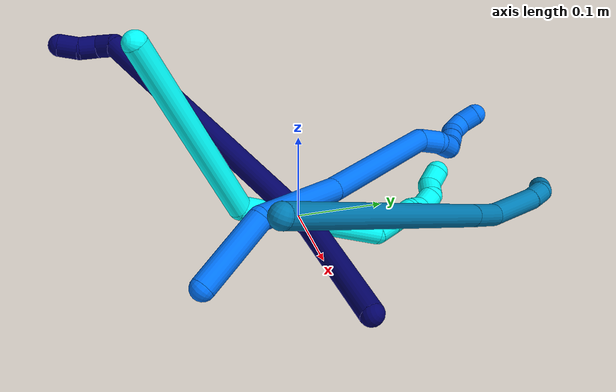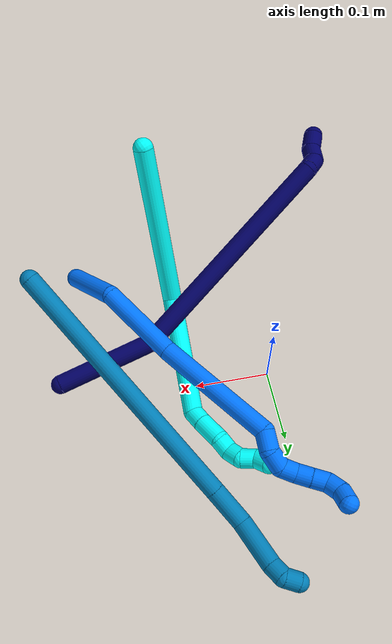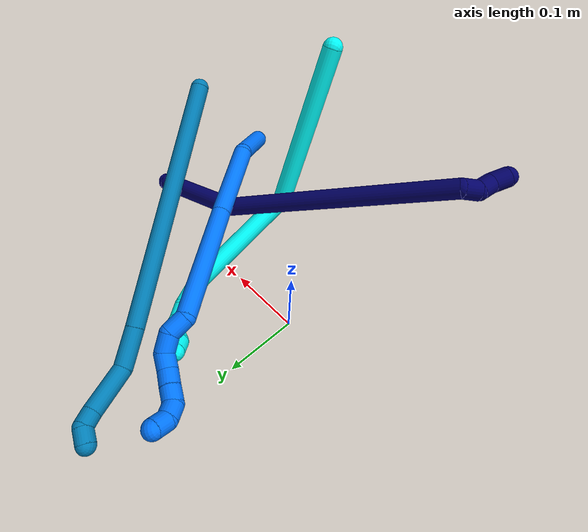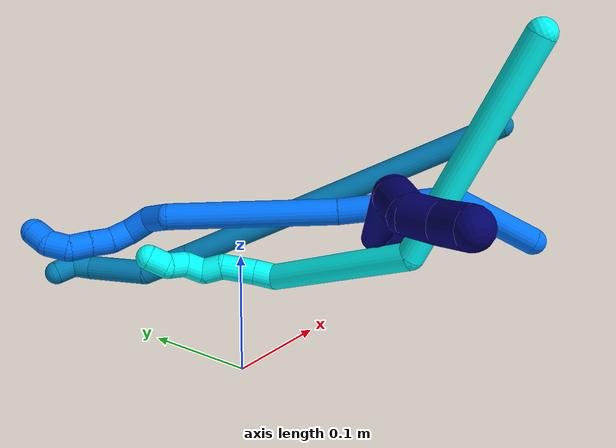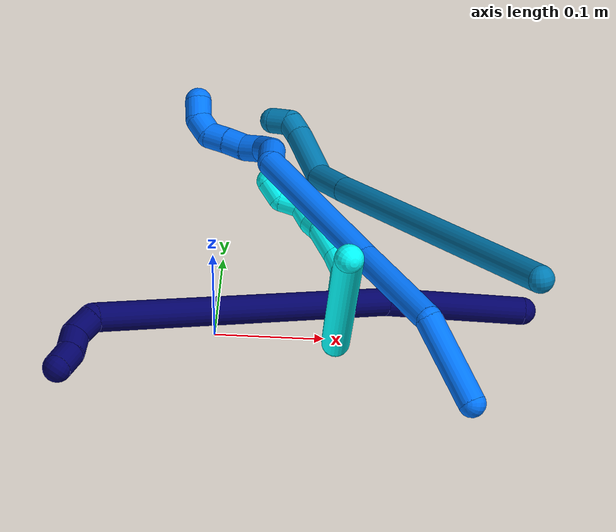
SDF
<sdf version="1.7">
 <world name="default">
  <model name="3">
   <static>0</static>
   <link name="3">
    <collision name="collision-cylinder-e_1_1_4">
     <pose>0.070438 -0.009194 -0.078288 3.02469 0.729261 2.83734</pose>
     <geometry><cylinder><radius>0.0125</radius><length>0.211425</length></cylinder></geometry>
     <surface>
      <friction><ode><mu>1.16</mu><mu2>1.16</mu2><slip1>0</slip1><slip2>0</slip2></ode></friction>
      <contact><ode><kp>1e+06</kp><kd>1</kd><max_vel>0</max_vel><min_depth>0.001</min_depth></ode></contact>
     </surface>
    </collision>
    <visual name="visual-cylinder-e_1_1_4">
     <pose>0.070438 -0.009194 -0.078288 3.02469 0.729261 2.83734</pose>
     <geometry><cylinder><radius>0.0125</radius><length>0.211425</length></cylinder></geometry>
     <material><ambient>0.003922 1 0.996078 1</ambient></material>
    </visual>
    <collision name="collision-cylinder-e_2_4_5">
     <pose>0.150536 0.014157 -0.226496 -2.70594 0.124601 -0.549429</pose>
     <geometry><cylinder><radius>0.0125</radius><length>0.155449</length></cylinder></geometry>
     <surface>
      <friction><ode><mu>1.16</mu><mu2>1.16</mu2><slip1>0</slip1><slip2>0</slip2></ode></friction>
      <contact><ode><kp>1e+06</kp><kd>1</kd><max_vel>0</max_vel><min_depth>0.001</min_depth></ode></contact>
     </surface>
    </collision>
    <visual name="visual-cylinder-e_2_4_5">
     <pose>0.150536 0.014157 -0.226496 -2.70594 0.124601 -0.549429</pose>
     <geometry><cylinder><radius>0.0125</radius><length>0.155449</length></cylinder></geometry>
     <material><ambient>0.003922 1 0.996078 1</ambient></material>
    </visual>
    <collision name="collision-cylinder-e_3_5_6">
     <pose>0.155204 0.048942 -0.304882 -2.88301 -0.518046 2.22928</pose>
     <geometry><cylinder><radius>0.0125</radius><length>0.020163</length></cylinder></geometry>
     <surface>
      <friction><ode><mu>1.16</mu><mu2>1.16</mu2><slip1>0</slip1><slip2>0</slip2></ode></friction>
      <contact><ode><kp>1e+06</kp><kd>1</kd><max_vel>0</max_vel><min_depth>0.001</min_depth></ode></contact>
     </surface>
    </collision>
    <visual name="visual-cylinder-e_3_5_6">
     <pose>0.155204 0.048942 -0.304882 -2.88301 -0.518046 2.22928</pose>
     <geometry><cylinder><radius>0.0125</radius><length>0.020163</length></cylinder></geometry>
     <material><ambient>0.003922 1 0.996078 1</ambient></material>
    </visual>
    <collision name="collision-cylinder-e_4_6_7">
     <pose>0.142216 0.053521 -0.327409 -2.97676 -0.511236 2.5293</pose>
     <geometry><cylinder><radius>0.0125</radius><length>0.032685</length></cylinder></geometry>
     <surface>
      <friction><ode><mu>1.16</mu><mu2>1.16</mu2><slip1>0</slip1><slip2>0</slip2></ode></friction>
      <contact><ode><kp>1e+06</kp><kd>1</kd><max_vel>0</max_vel><min_depth>0.001</min_depth></ode></contact>
     </surface>
    </collision>
    <visual name="visual-cylinder-e_4_6_7">
     <pose>0.142216 0.053521 -0.327409 -2.97676 -0.511236 2.5293</pose>
     <geometry><cylinder><radius>0.0125</radius><length>0.032685</length></cylinder></geometry>
     <material><ambient>0.003922 1 0.996078 1</ambient></material>
    </visual>
    <collision name="collision-cylinder-e_5_7_8">
     <pose>0.133088 0.055756 -0.351429 3.13123 -0.113226 -2.95925</pose>
     <geometry><cylinder><radius>0.0125</radius><length>0.020051</length></cylinder></geometry>
     <surface>
      <friction><ode><mu>1.16</mu><mu2>1.16</mu2><slip1>0</slip1><slip2>0</slip2></ode></friction>
      <contact><ode><kp>1e+06</kp><kd>1</kd><max_vel>0</max_vel><min_depth>0.001</min_depth></ode></contact>
     </surface>
    </collision>
    <visual name="visual-cylinder-e_5_7_8">
     <pose>0.133088 0.055756 -0.351429 3.13123 -0.113226 -2.95925</pose>
     <geometry><cylinder><radius>0.0125</radius><length>0.020051</length></cylinder></geometry>
     <material><ambient>0.003922 1 0.996078 1</ambient></material>
    </visual>
    <collision name="collision-cylinder-e_6_8_9">
     <pose>0.124922 0.056794 -0.368493 -2.98229 -0.774049 2.75481</pose>
     <geometry><cylinder><radius>0.0125</radius><length>0.020121</length></cylinder></geometry>
     <surface>
      <friction><ode><mu>1.16</mu><mu2>1.16</mu2><slip1>0</slip1><slip2>0</slip2></ode></friction>
      <contact><ode><kp>1e+06</kp><kd>1</kd><max_vel>0</max_vel><min_depth>0.001</min_depth></ode></contact>
     </surface>
    </collision>
    <visual name="visual-cylinder-e_6_8_9">
     <pose>0.124922 0.056794 -0.368493 -2.98229 -0.774049 2.75481</pose>
     <geometry><cylinder><radius>0.0125</radius><length>0.020121</length></cylinder></geometry>
     <material><ambient>0.003922 1 0.996078 1</ambient></material>
    </visual>
    <collision name="collision-cylinder-e_7_9_10">
     <pose>0.111981 0.052229 -0.381354 2.36067 -0.629824 -1.33899</pose>
     <geometry><cylinder><radius>0.0125</radius><length>0.020062</length></cylinder></geometry>
     <surface>
      <friction><ode><mu>1.16</mu><mu2>1.16</mu2><slip1>0</slip1><slip2>0</slip2></ode></friction>
      <contact><ode><kp>1e+06</kp><kd>1</kd><max_vel>0</max_vel><min_depth>0.001</min_depth></ode></contact>
     </surface>
    </collision>
    <visual name="visual-cylinder-e_7_9_10">
     <pose>0.111981 0.052229 -0.381354 2.36067 -0.629824 -1.33899</pose>
     <geometry><cylinder><radius>0.0125</radius><length>0.020062</length></cylinder></geometry>
     <material><ambient>0.003922 1 0.996078 1</ambient></material>
    </visual>
    <collision name="collision-cylinder-e_8_10_2">
     <pose>0.098169 0.047051 -0.393251 -3.05574 -0.908618 2.96615</pose>
     <geometry><cylinder><radius>0.0125</radius><length>0.020043</length></cylinder></geometry>
     <surface>
      <friction><ode><mu>1.16</mu><mu2>1.16</mu2><slip1>0</slip1><slip2>0</slip2></ode></friction>
      <contact><ode><kp>1e+06</kp><kd>1</kd><max_vel>0</max_vel><min_depth>0.001</min_depth></ode></contact>
     </surface>
    </collision>
    <visual name="visual-cylinder-e_8_10_2">
     <pose>0.098169 0.047051 -0.393251 -3.05574 -0.908618 2.96615</pose>
     <geometry><cylinder><radius>0.0125</radius><length>0.020043</length></cylinder></geometry>
     <material><ambient>0.003922 1 0.996078 1</ambient></material>
    </visual>
    <collision name="collision-sphere-2">
     <pose>0.090266 0.047579 -0.39939 0 -0 0</pose>
     <geometry><sphere><radius>0.0125</radius></sphere></geometry>
     <surface>
      <friction><ode><mu>1.16</mu><mu2>1.16</mu2><slip1>0</slip1><slip2>0</slip2></ode></friction>
      <contact><ode><kp>1e+06</kp><kd>1</kd><max_vel>0</max_vel><min_depth>0.001</min_depth></ode></contact>
     </surface>
    </collision>
    <visual name="visual-sphere-2">
     <pose>0.090266 0.047579 -0.39939 0 -0 0</pose>
     <geometry><sphere><radius>0.0125</radius></sphere></geometry>
     <material><ambient>0.003922 1 0.996078 1</ambient></material>
    </visual>
    <collision name="collision-sphere-10">
     <pose>0.106073 0.046522 -0.387112 0 -0 0</pose>
     <geometry><sphere><radius>0.0125</radius></sphere></geometry>
     <surface>
      <friction><ode><mu>1.16</mu><mu2>1.16</mu2><slip1>0</slip1><slip2>0</slip2></ode></friction>
      <contact><ode><kp>1e+06</kp><kd>1</kd><max_vel>0</max_vel><min_depth>0.001</min_depth></ode></contact>
     </surface>
    </collision>
    <visual name="visual-sphere-10">
     <pose>0.106073 0.046522 -0.387112 0 -0 0</pose>
     <geometry><sphere><radius>0.0125</radius></sphere></geometry>
     <material><ambient>0.003922 1 0.996078 1</ambient></material>
    </visual>
    <collision name="collision-sphere-9">
     <pose>0.11789 0.057935 -0.375596 0 -0 0</pose>
     <geometry><sphere><radius>0.0125</radius></sphere></geometry>
     <surface>
      <friction><ode><mu>1.16</mu><mu2>1.16</mu2><slip1>0</slip1><slip2>0</slip2></ode></friction>
      <contact><ode><kp>1e+06</kp><kd>1</kd><max_vel>0</max_vel><min_depth>0.001</min_depth></ode></contact>
     </surface>
    </collision>
    <visual name="visual-sphere-9">
     <pose>0.11789 0.057935 -0.375596 0 -0 0</pose>
     <geometry><sphere><radius>0.0125</radius></sphere></geometry>
     <material><ambient>0.003922 1 0.996078 1</ambient></material>
    </visual>
    <collision name="collision-sphere-4">
     <pose>0.140877 -0.018388 -0.156577 0 -0 0</pose>
     <geometry><sphere><radius>0.0125</radius></sphere></geometry>
     <surface>
      <friction><ode><mu>1.16</mu><mu2>1.16</mu2><slip1>0</slip1><slip2>0</slip2></ode></friction>
      <contact><ode><kp>1e+06</kp><kd>1</kd><max_vel>0</max_vel><min_depth>0.001</min_depth></ode></contact>
     </surface>
    </collision>
    <visual name="visual-sphere-4">
     <pose>0.140877 -0.018388 -0.156577 0 -0 0</pose>
     <geometry><sphere><radius>0.0125</radius></sphere></geometry>
     <material><ambient>0.003922 1 0.996078 1</ambient></material>
    </visual>
    <collision name="collision-sphere-1">
     <geometry><sphere><radius>0.0125</radius></sphere></geometry>
     <surface>
      <friction><ode><mu>1.16</mu><mu2>1.16</mu2><slip1>0</slip1><slip2>0</slip2></ode></friction>
      <contact><ode><kp>1e+06</kp><kd>1</kd><max_vel>0</max_vel><min_depth>0.001</min_depth></ode></contact>
     </surface>
    </collision>
    <visual name="visual-sphere-1">
     <geometry><sphere><radius>0.0125</radius></sphere></geometry>
     <material><ambient>0.003922 1 0.996078 1</ambient></material>
    </visual>
    <collision name="collision-sphere-8">
     <pose>0.131955 0.055653 -0.36139 0 -0 0</pose>
     <geometry><sphere><radius>0.0125</radius></sphere></geometry>
     <surface>
      <friction><ode><mu>1.16</mu><mu2>1.16</mu2><slip1>0</slip1><slip2>0</slip2></ode></friction>
      <contact><ode><kp>1e+06</kp><kd>1</kd><max_vel>0</max_vel><min_depth>0.001</min_depth></ode></contact>
     </surface>
    </collision>
    <visual name="visual-sphere-8">
     <pose>0.131955 0.055653 -0.36139 0 -0 0</pose>
     <geometry><sphere><radius>0.0125</radius></sphere></geometry>
     <material><ambient>0.003922 1 0.996078 1</ambient></material>
    </visual>
    <collision name="collision-sphere-5">
     <pose>0.160196 0.046703 -0.296414 0 -0 0</pose>
     <geometry><sphere><radius>0.0125</radius></sphere></geometry>
     <surface>
      <friction><ode><mu>1.16</mu><mu2>1.16</mu2><slip1>0</slip1><slip2>0</slip2></ode></friction>
      <contact><ode><kp>1e+06</kp><kd>1</kd><max_vel>0</max_vel><min_depth>0.001</min_depth></ode></contact>
     </surface>
    </collision>
    <visual name="visual-sphere-5">
     <pose>0.160196 0.046703 -0.296414 0 -0 0</pose>
     <geometry><sphere><radius>0.0125</radius></sphere></geometry>
     <material><ambient>0.003922 1 0.996078 1</ambient></material>
    </visual>
    <collision name="collision-sphere-6">
     <pose>0.150212 0.051182 -0.313349 0 -0 0</pose>
     <geometry><sphere><radius>0.0125</radius></sphere></geometry>
     <surface>
      <friction><ode><mu>1.16</mu><mu2>1.16</mu2><slip1>0</slip1><slip2>0</slip2></ode></friction>
      <contact><ode><kp>1e+06</kp><kd>1</kd><max_vel>0</max_vel><min_depth>0.001</min_depth></ode></contact>
     </surface>
    </collision>
    <visual name="visual-sphere-6">
     <pose>0.150212 0.051182 -0.313349 0 -0 0</pose>
     <geometry><sphere><radius>0.0125</radius></sphere></geometry>
     <material><ambient>0.003922 1 0.996078 1</ambient></material>
    </visual>
    <collision name="collision-sphere-7">
     <pose>0.13422 0.055859 -0.341469 0 -0 0</pose>
     <geometry><sphere><radius>0.0125</radius></sphere></geometry>
     <surface>
      <friction><ode><mu>1.16</mu><mu2>1.16</mu2><slip1>0</slip1><slip2>0</slip2></ode></friction>
      <contact><ode><kp>1e+06</kp><kd>1</kd><max_vel>0</max_vel><min_depth>0.001</min_depth></ode></contact>
     </surface>
    </collision>
    <visual name="visual-sphere-7">
     <pose>0.13422 0.055859 -0.341469 0 -0 0</pose>
     <geometry><sphere><radius>0.0125</radius></sphere></geometry>
     <material><ambient>0.003922 1 0.996078 1</ambient></material>
    </visual>
    <inertial>
     <pose>0.110934 0.014489 -0.197206 0 -0 0</pose>
     <mass>0.5</mass>
     <inertia>
      <ixx>-0.000281</ixx>
      <ixy>0</ixy>
      <ixz>0</ixz>
      <iyy>0.000562</iyy>
      <iyz>0</iyz>
      <izz>-0.00066</izz>
     </inertia>
    </inertial>
   </link>
   <pose>0.130781 -0.18417 0.277329 0.652763 1.05044 -0.369888</pose>
  </model>
  <model name="7">
   <static>0</static>
   <link name="7">
    <collision name="collision-cylinder-e_1_1_4">
     <pose>-0.055642 0.003552 -0.031609 -3.02968 -1.05149 2.9491</pose>
     <geometry><cylinder><radius>0.0125</radius><length>0.128185</length></cylinder></geometry>
     <surface>
      <friction><ode><mu>1.16</mu><mu2>1.16</mu2><slip1>0</slip1><slip2>0</slip2></ode></friction>
      <contact><ode><kp>1e+06</kp><kd>1</kd><max_vel>0</max_vel><min_depth>0.001</min_depth></ode></contact>
     </surface>
    </collision>
    <visual name="visual-cylinder-e_1_1_4">
     <pose>-0.055642 0.003552 -0.031609 -3.02968 -1.05149 2.9491</pose>
     <geometry><cylinder><radius>0.0125</radius><length>0.128185</length></cylinder></geometry>
     <material><ambient>0.003922 0 0.403922 1</ambient></material>
    </visual>
    <collision name="collision-cylinder-e_2_4_5">
     <pose>-0.235035 -0.044166 -0.137937 2.54021 -0.93874 -2.04405</pose>
     <geometry><cylinder><radius>0.0125</radius><length>0.306762</length></cylinder></geometry>
     <surface>
      <friction><ode><mu>1.16</mu><mu2>1.16</mu2><slip1>0</slip1><slip2>0</slip2></ode></friction>
      <contact><ode><kp>1e+06</kp><kd>1</kd><max_vel>0</max_vel><min_depth>0.001</min_depth></ode></contact>
     </surface>
    </collision>
    <visual name="visual-cylinder-e_2_4_5">
     <pose>-0.235035 -0.044166 -0.137937 2.54021 -0.93874 -2.04405</pose>
     <geometry><cylinder><radius>0.0125</radius><length>0.306762</length></cylinder></geometry>
     <material><ambient>0.003922 0 0.403922 1</ambient></material>
    </visual>
    <collision name="collision-cylinder-e_3_5_6">
     <pose>-0.361953 -0.098623 -0.222392 2.82528 -0.299869 -1.51659</pose>
     <geometry><cylinder><radius>0.0125</radius><length>0.021444</length></cylinder></geometry>
     <surface>
      <friction><ode><mu>1.16</mu><mu2>1.16</mu2><slip1>0</slip1><slip2>0</slip2></ode></friction>
      <contact><ode><kp>1e+06</kp><kd>1</kd><max_vel>0</max_vel><min_depth>0.001</min_depth></ode></contact>
     </surface>
    </collision>
    <visual name="visual-cylinder-e_3_5_6">
     <pose>-0.361953 -0.098623 -0.222392 2.82528 -0.299869 -1.51659</pose>
     <geometry><cylinder><radius>0.0125</radius><length>0.021444</length></cylinder></geometry>
     <material><ambient>0.003922 0 0.403922 1</ambient></material>
    </visual>
    <collision name="collision-cylinder-e_4_6_7">
     <pose>-0.364775 -0.109707 -0.239208 2.3017 0.03253 0.072829</pose>
     <geometry><cylinder><radius>0.0125</radius><length>0.021224</length></cylinder></geometry>
     <surface>
      <friction><ode><mu>1.16</mu><mu2>1.16</mu2><slip1>0</slip1><slip2>0</slip2></ode></friction>
      <contact><ode><kp>1e+06</kp><kd>1</kd><max_vel>0</max_vel><min_depth>0.001</min_depth></ode></contact>
     </surface>
    </collision>
    <visual name="visual-cylinder-e_4_6_7">
     <pose>-0.364775 -0.109707 -0.239208 2.3017 0.03253 0.072829</pose>
     <geometry><cylinder><radius>0.0125</radius><length>0.021224</length></cylinder></geometry>
     <material><ambient>0.003922 0 0.403922 1</ambient></material>
    </visual>
    <collision name="collision-cylinder-e_5_7_2">
     <pose>-0.367733 -0.125209 -0.253806 2.35041 -0.299607 -0.693636</pose>
     <geometry><cylinder><radius>0.0125</radius><length>0.022384</length></cylinder></geometry>
     <surface>
      <friction><ode><mu>1.16</mu><mu2>1.16</mu2><slip1>0</slip1><slip2>0</slip2></ode></friction>
      <contact><ode><kp>1e+06</kp><kd>1</kd><max_vel>0</max_vel><min_depth>0.001</min_depth></ode></contact>
     </surface>
    </collision>
    <visual name="visual-cylinder-e_5_7_2">
     <pose>-0.367733 -0.125209 -0.253806 2.35041 -0.299607 -0.693636</pose>
     <geometry><cylinder><radius>0.0125</radius><length>0.022384</length></cylinder></geometry>
     <material><ambient>0.003922 0 0.403922 1</ambient></material>
    </visual>
    <collision name="collision-sphere-2">
     <pose>-0.371036 -0.132814 -0.261324 0 -0 0</pose>
     <geometry><sphere><radius>0.0125</radius></sphere></geometry>
     <surface>
      <friction><ode><mu>1.16</mu><mu2>1.16</mu2><slip1>0</slip1><slip2>0</slip2></ode></friction>
      <contact><ode><kp>1e+06</kp><kd>1</kd><max_vel>0</max_vel><min_depth>0.001</min_depth></ode></contact>
     </surface>
    </collision>
    <visual name="visual-sphere-2">
     <pose>-0.371036 -0.132814 -0.261324 0 -0 0</pose>
     <geometry><sphere><radius>0.0125</radius></sphere></geometry>
     <material><ambient>0.003922 0 0.403922 1</ambient></material>
    </visual>
    <collision name="collision-sphere-7">
     <pose>-0.36443 -0.117604 -0.246288 0 -0 0</pose>
     <geometry><sphere><radius>0.0125</radius></sphere></geometry>
     <surface>
      <friction><ode><mu>1.16</mu><mu2>1.16</mu2><slip1>0</slip1><slip2>0</slip2></ode></friction>
      <contact><ode><kp>1e+06</kp><kd>1</kd><max_vel>0</max_vel><min_depth>0.001</min_depth></ode></contact>
     </surface>
    </collision>
    <visual name="visual-sphere-7">
     <pose>-0.36443 -0.117604 -0.246288 0 -0 0</pose>
     <geometry><sphere><radius>0.0125</radius></sphere></geometry>
     <material><ambient>0.003922 0 0.403922 1</ambient></material>
    </visual>
    <collision name="collision-sphere-6">
     <pose>-0.36512 -0.101809 -0.232128 0 -0 0</pose>
     <geometry><sphere><radius>0.0125</radius></sphere></geometry>
     <surface>
      <friction><ode><mu>1.16</mu><mu2>1.16</mu2><slip1>0</slip1><slip2>0</slip2></ode></friction>
      <contact><ode><kp>1e+06</kp><kd>1</kd><max_vel>0</max_vel><min_depth>0.001</min_depth></ode></contact>
     </surface>
    </collision>
    <visual name="visual-sphere-6">
     <pose>-0.36512 -0.101809 -0.232128 0 -0 0</pose>
     <geometry><sphere><radius>0.0125</radius></sphere></geometry>
     <material><ambient>0.003922 0 0.403922 1</ambient></material>
    </visual>
    <collision name="collision-sphere-5">
     <pose>-0.358785 -0.095436 -0.212657 0 -0 0</pose>
     <geometry><sphere><radius>0.0125</radius></sphere></geometry>
     <surface>
      <friction><ode><mu>1.16</mu><mu2>1.16</mu2><slip1>0</slip1><slip2>0</slip2></ode></friction>
      <contact><ode><kp>1e+06</kp><kd>1</kd><max_vel>0</max_vel><min_depth>0.001</min_depth></ode></contact>
     </surface>
    </collision>
    <visual name="visual-sphere-5">
     <pose>-0.358785 -0.095436 -0.212657 0 -0 0</pose>
     <geometry><sphere><radius>0.0125</radius></sphere></geometry>
     <material><ambient>0.003922 0 0.403922 1</ambient></material>
    </visual>
    <collision name="collision-sphere-1">
     <geometry><sphere><radius>0.0125</radius></sphere></geometry>
     <surface>
      <friction><ode><mu>1.16</mu><mu2>1.16</mu2><slip1>0</slip1><slip2>0</slip2></ode></friction>
      <contact><ode><kp>1e+06</kp><kd>1</kd><max_vel>0</max_vel><min_depth>0.001</min_depth></ode></contact>
     </surface>
    </collision>
    <visual name="visual-sphere-1">
     <geometry><sphere><radius>0.0125</radius></sphere></geometry>
     <material><ambient>0.003922 0 0.403922 1</ambient></material>
    </visual>
    <collision name="collision-sphere-4">
     <pose>-0.111285 0.007105 -0.063218 0 -0 0</pose>
     <geometry><sphere><radius>0.0125</radius></sphere></geometry>
     <surface>
      <friction><ode><mu>1.16</mu><mu2>1.16</mu2><slip1>0</slip1><slip2>0</slip2></ode></friction>
      <contact><ode><kp>1e+06</kp><kd>1</kd><max_vel>0</max_vel><min_depth>0.001</min_depth></ode></contact>
     </surface>
    </collision>
    <visual name="visual-sphere-4">
     <pose>-0.111285 0.007105 -0.063218 0 -0 0</pose>
     <geometry><sphere><radius>0.0125</radius></sphere></geometry>
     <material><ambient>0.003922 0 0.403922 1</ambient></material>
    </visual>
    <inertial>
     <pose>-0.205936 -0.040678 -0.123786 0 -0 0</pose>
     <mass>0.5</mass>
     <inertia>
      <ixx>-0.002022</ixx>
      <ixy>0</ixy>
      <ixz>0</ixz>
      <iyy>0.000801</iyy>
      <iyz>0</iyz>
      <izz>0.002889</izz>
     </inertia>
    </inertial>
   </link>
   <pose>0.279586 -0.008758 0.055065 -0.706854 0.663993 -0.099838</pose>
  </model>
  <model name="9">
   <static>0</static>
   <link name="9">
    <collision name="collision-cylinder-e_1_1_4">
     <pose>-0.090839 0.146563 0.003987 -1.5436 -0.554682 0.540523</pose>
     <geometry><cylinder><radius>0.0125</radius><length>0.344954</length></cylinder></geometry>
     <surface>
      <friction><ode><mu>1.16</mu><mu2>1.16</mu2><slip1>0</slip1><slip2>0</slip2></ode></friction>
      <contact><ode><kp>1e+06</kp><kd>1</kd><max_vel>0</max_vel><min_depth>0.001</min_depth></ode></contact>
     </surface>
    </collision>
    <visual name="visual-cylinder-e_1_1_4">
     <pose>-0.090839 0.146563 0.003987 -1.5436 -0.554682 0.540523</pose>
     <geometry><cylinder><radius>0.0125</radius><length>0.344954</length></cylinder></geometry>
     <material><ambient>0 0.490196 0.709804 1</ambient></material>
    </visual>
    <collision name="collision-cylinder-e_2_4_5">
     <pose>-0.195089 0.315373 0.009249 -1.51349 -0.541762 0.512916</pose>
     <geometry><cylinder><radius>0.0125</radius><length>0.052018</length></cylinder></geometry>
     <surface>
      <friction><ode><mu>1.16</mu><mu2>1.16</mu2><slip1>0</slip1><slip2>0</slip2></ode></friction>
      <contact><ode><kp>1e+06</kp><kd>1</kd><max_vel>0</max_vel><min_depth>0.001</min_depth></ode></contact>
     </surface>
    </collision>
    <visual name="visual-cylinder-e_2_4_5">
     <pose>-0.195089 0.315373 0.009249 -1.51349 -0.541762 0.512916</pose>
     <geometry><cylinder><radius>0.0125</radius><length>0.052018</length></cylinder></geometry>
     <material><ambient>0 0.490196 0.709804 1</ambient></material>
    </visual>
    <collision name="collision-cylinder-e_3_5_6">
     <pose>-0.21849 0.363918 0.024194 -1.09146 -0.325111 0.198524</pose>
     <geometry><cylinder><radius>0.0125</radius><length>0.062551</length></cylinder></geometry>
     <surface>
      <friction><ode><mu>1.16</mu><mu2>1.16</mu2><slip1>0</slip1><slip2>0</slip2></ode></friction>
      <contact><ode><kp>1e+06</kp><kd>1</kd><max_vel>0</max_vel><min_depth>0.001</min_depth></ode></contact>
     </surface>
    </collision>
    <visual name="visual-cylinder-e_3_5_6">
     <pose>-0.21849 0.363918 0.024194 -1.09146 -0.325111 0.198524</pose>
     <geometry><cylinder><radius>0.0125</radius><length>0.062551</length></cylinder></geometry>
     <material><ambient>0 0.490196 0.709804 1</ambient></material>
    </visual>
    <collision name="collision-cylinder-e_4_6_7">
     <pose>-0.232772 0.397547 0.043141 -0.946795 -0.443479 0.22995</pose>
     <geometry><cylinder><radius>0.0125</radius><length>0.020005</length></cylinder></geometry>
     <surface>
      <friction><ode><mu>1.16</mu><mu2>1.16</mu2><slip1>0</slip1><slip2>0</slip2></ode></friction>
      <contact><ode><kp>1e+06</kp><kd>1</kd><max_vel>0</max_vel><min_depth>0.001</min_depth></ode></contact>
     </surface>
    </collision>
    <visual name="visual-cylinder-e_4_6_7">
     <pose>-0.232772 0.397547 0.043141 -0.946795 -0.443479 0.22995</pose>
     <geometry><cylinder><radius>0.0125</radius><length>0.020005</length></cylinder></geometry>
     <material><ambient>0 0.490196 0.709804 1</ambient></material>
    </visual>
    <collision name="collision-cylinder-e_5_7_2">
     <pose>-0.246116 0.409636 0.048898 -1.47062 -1.08489 0.998314</pose>
     <geometry><cylinder><radius>0.0125</radius><length>0.020473</length></cylinder></geometry>
     <surface>
      <friction><ode><mu>1.16</mu><mu2>1.16</mu2><slip1>0</slip1><slip2>0</slip2></ode></friction>
      <contact><ode><kp>1e+06</kp><kd>1</kd><max_vel>0</max_vel><min_depth>0.001</min_depth></ode></contact>
     </surface>
    </collision>
    <visual name="visual-cylinder-e_5_7_2">
     <pose>-0.246116 0.409636 0.048898 -1.47062 -1.08489 0.998314</pose>
     <geometry><cylinder><radius>0.0125</radius><length>0.020473</length></cylinder></geometry>
     <material><ambient>0 0.490196 0.709804 1</ambient></material>
    </visual>
    <collision name="collision-sphere-2">
     <pose>-0.255167 0.414393 0.049377 0 -0 0</pose>
     <geometry><sphere><radius>0.0125</radius></sphere></geometry>
     <surface>
      <friction><ode><mu>1.16</mu><mu2>1.16</mu2><slip1>0</slip1><slip2>0</slip2></ode></friction>
      <contact><ode><kp>1e+06</kp><kd>1</kd><max_vel>0</max_vel><min_depth>0.001</min_depth></ode></contact>
     </surface>
    </collision>
    <visual name="visual-sphere-2">
     <pose>-0.255167 0.414393 0.049377 0 -0 0</pose>
     <geometry><sphere><radius>0.0125</radius></sphere></geometry>
     <material><ambient>0 0.490196 0.709804 1</ambient></material>
    </visual>
    <collision name="collision-sphere-7">
     <pose>-0.237064 0.40488 0.04842 0 -0 0</pose>
     <geometry><sphere><radius>0.0125</radius></sphere></geometry>
     <surface>
      <friction><ode><mu>1.16</mu><mu2>1.16</mu2><slip1>0</slip1><slip2>0</slip2></ode></friction>
      <contact><ode><kp>1e+06</kp><kd>1</kd><max_vel>0</max_vel><min_depth>0.001</min_depth></ode></contact>
     </surface>
    </collision>
    <visual name="visual-sphere-7">
     <pose>-0.237064 0.40488 0.04842 0 -0 0</pose>
     <geometry><sphere><radius>0.0125</radius></sphere></geometry>
     <material><ambient>0 0.490196 0.709804 1</ambient></material>
    </visual>
    <collision name="collision-sphere-6">
     <pose>-0.22848 0.390215 0.037862 0 -0 0</pose>
     <geometry><sphere><radius>0.0125</radius></sphere></geometry>
     <surface>
      <friction><ode><mu>1.16</mu><mu2>1.16</mu2><slip1>0</slip1><slip2>0</slip2></ode></friction>
      <contact><ode><kp>1e+06</kp><kd>1</kd><max_vel>0</max_vel><min_depth>0.001</min_depth></ode></contact>
     </surface>
    </collision>
    <visual name="visual-sphere-6">
     <pose>-0.22848 0.390215 0.037862 0 -0 0</pose>
     <geometry><sphere><radius>0.0125</radius></sphere></geometry>
     <material><ambient>0 0.490196 0.709804 1</ambient></material>
    </visual>
    <collision name="collision-sphere-5">
     <pose>-0.2085 0.337621 0.010526 0 -0 0</pose>
     <geometry><sphere><radius>0.0125</radius></sphere></geometry>
     <surface>
      <friction><ode><mu>1.16</mu><mu2>1.16</mu2><slip1>0</slip1><slip2>0</slip2></ode></friction>
      <contact><ode><kp>1e+06</kp><kd>1</kd><max_vel>0</max_vel><min_depth>0.001</min_depth></ode></contact>
     </surface>
    </collision>
    <visual name="visual-sphere-5">
     <pose>-0.2085 0.337621 0.010526 0 -0 0</pose>
     <geometry><sphere><radius>0.0125</radius></sphere></geometry>
     <material><ambient>0 0.490196 0.709804 1</ambient></material>
    </visual>
    <collision name="collision-sphere-1">
     <geometry><sphere><radius>0.0125</radius></sphere></geometry>
     <surface>
      <friction><ode><mu>1.16</mu><mu2>1.16</mu2><slip1>0</slip1><slip2>0</slip2></ode></friction>
      <contact><ode><kp>1e+06</kp><kd>1</kd><max_vel>0</max_vel><min_depth>0.001</min_depth></ode></contact>
     </surface>
    </collision>
    <visual name="visual-sphere-1">
     <geometry><sphere><radius>0.0125</radius></sphere></geometry>
     <material><ambient>0 0.490196 0.709804 1</ambient></material>
    </visual>
    <collision name="collision-sphere-4">
     <pose>-0.181678 0.293125 0.007973 0 -0 0</pose>
     <geometry><sphere><radius>0.0125</radius></sphere></geometry>
     <surface>
      <friction><ode><mu>1.16</mu><mu2>1.16</mu2><slip1>0</slip1><slip2>0</slip2></ode></friction>
      <contact><ode><kp>1e+06</kp><kd>1</kd><max_vel>0</max_vel><min_depth>0.001</min_depth></ode></contact>
     </surface>
    </collision>
    <visual name="visual-sphere-4">
     <pose>-0.181678 0.293125 0.007973 0 -0 0</pose>
     <geometry><sphere><radius>0.0125</radius></sphere></geometry>
     <material><ambient>0 0.490196 0.709804 1</ambient></material>
    </visual>
    <inertial>
     <pose>-0.129691 0.21213 0.010468 0 -0 0</pose>
     <mass>0.5</mass>
     <inertia>
      <ixx>0.004029</ixx>
      <ixy>0</ixy>
      <ixz>0</ixz>
      <iyy>0.002574</iyy>
      <iyz>0</iyz>
      <izz>-0.001122</izz>
     </inertia>
    </inertial>
   </link>
   <pose>0.291285 -0.093318 0.176586 -0.454055 -0.112227 0.04966</pose>
  </model>
  <model name="14">
   <static>0</static>
   <link name="14">
    <collision name="collision-cylinder-e_1_1_4">
     <pose>0.008627 0.041393 0.002365 -1.51373 0.20514 -0.193828</pose>
     <geometry><cylinder><radius>0.0125</radius><length>0.084697</length></cylinder></geometry>
     <surface>
      <friction><ode><mu>1.16</mu><mu2>1.16</mu2><slip1>0</slip1><slip2>0</slip2></ode></friction>
      <contact><ode><kp>1e+06</kp><kd>1</kd><max_vel>0</max_vel><min_depth>0.001</min_depth></ode></contact>
     </surface>
    </collision>
    <visual name="visual-cylinder-e_1_1_4">
     <pose>0.008627 0.041393 0.002365 -1.51373 0.20514 -0.193828</pose>
     <geometry><cylinder><radius>0.0125</radius><length>0.084697</length></cylinder></geometry>
     <material><ambient>0 0.462745 1 1</ambient></material>
    </visual>
    <collision name="collision-cylinder-e_2_4_5">
     <pose>0.001786 0.131586 -0.00967 -1.85773 -0.295112 0.392542</pose>
     <geometry><cylinder><radius>0.0125</radius><length>0.106357</length></cylinder></geometry>
     <surface>
      <friction><ode><mu>1.16</mu><mu2>1.16</mu2><slip1>0</slip1><slip2>0</slip2></ode></friction>
      <contact><ode><kp>1e+06</kp><kd>1</kd><max_vel>0</max_vel><min_depth>0.001</min_depth></ode></contact>
     </surface>
    </collision>
    <visual name="visual-cylinder-e_2_4_5">
     <pose>0.001786 0.131586 -0.00967 -1.85773 -0.295112 0.392542</pose>
     <geometry><cylinder><radius>0.0125</radius><length>0.106357</length></cylinder></geometry>
     <material><ambient>0 0.462745 1 1</ambient></material>
    </visual>
    <collision name="collision-cylinder-e_3_5_6">
     <pose>-0.033157 0.256551 -0.038859 -1.76259 -0.245944 0.297591</pose>
     <geometry><cylinder><radius>0.0125</radius><length>0.15999</length></cylinder></geometry>
     <surface>
      <friction><ode><mu>1.16</mu><mu2>1.16</mu2><slip1>0</slip1><slip2>0</slip2></ode></friction>
      <contact><ode><kp>1e+06</kp><kd>1</kd><max_vel>0</max_vel><min_depth>0.001</min_depth></ode></contact>
     </surface>
    </collision>
    <visual name="visual-cylinder-e_3_5_6">
     <pose>-0.033157 0.256551 -0.038859 -1.76259 -0.245944 0.297591</pose>
     <geometry><cylinder><radius>0.0125</radius><length>0.15999</length></cylinder></geometry>
     <material><ambient>0 0.462745 1 1</ambient></material>
    </visual>
    <collision name="collision-cylinder-e_4_6_7">
     <pose>-0.053502 0.341276 -0.062713 -2.38478 -0.069591 0.174667</pose>
     <geometry><cylinder><radius>0.0125</radius><length>0.024997</length></cylinder></geometry>
     <surface>
      <friction><ode><mu>1.16</mu><mu2>1.16</mu2><slip1>0</slip1><slip2>0</slip2></ode></friction>
      <contact><ode><kp>1e+06</kp><kd>1</kd><max_vel>0</max_vel><min_depth>0.001</min_depth></ode></contact>
     </surface>
    </collision>
    <visual name="visual-cylinder-e_4_6_7">
     <pose>-0.053502 0.341276 -0.062713 -2.38478 -0.069591 0.174667</pose>
     <geometry><cylinder><radius>0.0125</radius><length>0.024997</length></cylinder></geometry>
     <material><ambient>0 0.462745 1 1</ambient></material>
    </visual>
    <collision name="collision-cylinder-e_5_7_8">
     <pose>-0.061166 0.357429 -0.077625 -2.22708 -0.616729 1.14903</pose>
     <geometry><cylinder><radius>0.0125</radius><length>0.023494</length></cylinder></geometry>
     <surface>
      <friction><ode><mu>1.16</mu><mu2>1.16</mu2><slip1>0</slip1><slip2>0</slip2></ode></friction>
      <contact><ode><kp>1e+06</kp><kd>1</kd><max_vel>0</max_vel><min_depth>0.001</min_depth></ode></contact>
     </surface>
    </collision>
    <visual name="visual-cylinder-e_5_7_8">
     <pose>-0.061166 0.357429 -0.077625 -2.22708 -0.616729 1.14903</pose>
     <geometry><cylinder><radius>0.0125</radius><length>0.023494</length></cylinder></geometry>
     <material><ambient>0 0.462745 1 1</ambient></material>
    </visual>
    <collision name="collision-cylinder-e_6_8_9">
     <pose>-0.074917 0.372404 -0.082956 -1.50102 -0.75449 0.707876</pose>
     <geometry><cylinder><radius>0.0125</radius><length>0.020314</length></cylinder></geometry>
     <surface>
      <friction><ode><mu>1.16</mu><mu2>1.16</mu2><slip1>0</slip1><slip2>0</slip2></ode></friction>
      <contact><ode><kp>1e+06</kp><kd>1</kd><max_vel>0</max_vel><min_depth>0.001</min_depth></ode></contact>
     </surface>
    </collision>
    <visual name="visual-cylinder-e_6_8_9">
     <pose>-0.074917 0.372404 -0.082956 -1.50102 -0.75449 0.707876</pose>
     <geometry><cylinder><radius>0.0125</radius><length>0.020314</length></cylinder></geometry>
     <material><ambient>0 0.462745 1 1</ambient></material>
    </visual>
    <collision name="collision-cylinder-e_7_9_10">
     <pose>-0.086478 0.38853 -0.080524 -1.35501 -0.475125 0.384795</pose>
     <geometry><cylinder><radius>0.0125</radius><length>0.020132</length></cylinder></geometry>
     <surface>
      <friction><ode><mu>1.16</mu><mu2>1.16</mu2><slip1>0</slip1><slip2>0</slip2></ode></friction>
      <contact><ode><kp>1e+06</kp><kd>1</kd><max_vel>0</max_vel><min_depth>0.001</min_depth></ode></contact>
     </surface>
    </collision>
    <visual name="visual-cylinder-e_7_9_10">
     <pose>-0.086478 0.38853 -0.080524 -1.35501 -0.475125 0.384795</pose>
     <geometry><cylinder><radius>0.0125</radius><length>0.020132</length></cylinder></geometry>
     <material><ambient>0 0.462745 1 1</ambient></material>
    </visual>
    <collision name="collision-cylinder-e_8_10_11">
     <pose>-0.096199 0.405654 -0.076697 -1.34669 -0.536865 0.432011</pose>
     <geometry><cylinder><radius>0.0125</radius><length>0.020006</length></cylinder></geometry>
     <surface>
      <friction><ode><mu>1.16</mu><mu2>1.16</mu2><slip1>0</slip1><slip2>0</slip2></ode></friction>
      <contact><ode><kp>1e+06</kp><kd>1</kd><max_vel>0</max_vel><min_depth>0.001</min_depth></ode></contact>
     </surface>
    </collision>
    <visual name="visual-cylinder-e_8_10_11">
     <pose>-0.096199 0.405654 -0.076697 -1.34669 -0.536865 0.432011</pose>
     <geometry><cylinder><radius>0.0125</radius><length>0.020006</length></cylinder></geometry>
     <material><ambient>0 0.462745 1 1</ambient></material>
    </visual>
    <collision name="collision-cylinder-e_9_11_12">
     <pose>-0.101428 0.424027 -0.075209 -1.613 -0.011339 0.011828</pose>
     <geometry><cylinder><radius>0.0125</radius><length>0.020003</length></cylinder></geometry>
     <surface>
      <friction><ode><mu>1.16</mu><mu2>1.16</mu2><slip1>0</slip1><slip2>0</slip2></ode></friction>
      <contact><ode><kp>1e+06</kp><kd>1</kd><max_vel>0</max_vel><min_depth>0.001</min_depth></ode></contact>
     </surface>
    </collision>
    <visual name="visual-cylinder-e_9_11_12">
     <pose>-0.101428 0.424027 -0.075209 -1.613 -0.011339 0.011828</pose>
     <geometry><cylinder><radius>0.0125</radius><length>0.020003</length></cylinder></geometry>
     <material><ambient>0 0.462745 1 1</ambient></material>
    </visual>
    <collision name="collision-cylinder-e_10_12_2">
     <pose>-0.097299 0.442602 -0.078535 -1.89709 0.437838 -0.601509</pose>
     <geometry><cylinder><radius>0.0125</radius><length>0.02001</length></cylinder></geometry>
     <surface>
      <friction><ode><mu>1.16</mu><mu2>1.16</mu2><slip1>0</slip1><slip2>0</slip2></ode></friction>
      <contact><ode><kp>1e+06</kp><kd>1</kd><max_vel>0</max_vel><min_depth>0.001</min_depth></ode></contact>
     </surface>
    </collision>
    <visual name="visual-cylinder-e_10_12_2">
     <pose>-0.097299 0.442602 -0.078535 -1.89709 0.437838 -0.601509</pose>
     <geometry><cylinder><radius>0.0125</radius><length>0.02001</length></cylinder></geometry>
     <material><ambient>0 0.462745 1 1</ambient></material>
    </visual>
    <collision name="collision-sphere-2">
     <pose>-0.093057 0.451185 -0.08144 0 -0 0</pose>
     <geometry><sphere><radius>0.0125</radius></sphere></geometry>
     <surface>
      <friction><ode><mu>1.16</mu><mu2>1.16</mu2><slip1>0</slip1><slip2>0</slip2></ode></friction>
      <contact><ode><kp>1e+06</kp><kd>1</kd><max_vel>0</max_vel><min_depth>0.001</min_depth></ode></contact>
     </surface>
    </collision>
    <visual name="visual-sphere-2">
     <pose>-0.093057 0.451185 -0.08144 0 -0 0</pose>
     <geometry><sphere><radius>0.0125</radius></sphere></geometry>
     <material><ambient>0 0.462745 1 1</ambient></material>
    </visual>
    <collision name="collision-sphere-12">
     <pose>-0.101541 0.434019 -0.075631 0 -0 0</pose>
     <geometry><sphere><radius>0.0125</radius></sphere></geometry>
     <surface>
      <friction><ode><mu>1.16</mu><mu2>1.16</mu2><slip1>0</slip1><slip2>0</slip2></ode></friction>
      <contact><ode><kp>1e+06</kp><kd>1</kd><max_vel>0</max_vel><min_depth>0.001</min_depth></ode></contact>
     </surface>
    </collision>
    <visual name="visual-sphere-12">
     <pose>-0.101541 0.434019 -0.075631 0 -0 0</pose>
     <geometry><sphere><radius>0.0125</radius></sphere></geometry>
     <material><ambient>0 0.462745 1 1</ambient></material>
    </visual>
    <collision name="collision-sphere-11">
     <pose>-0.101315 0.414035 -0.074787 0 -0 0</pose>
     <geometry><sphere><radius>0.0125</radius></sphere></geometry>
     <surface>
      <friction><ode><mu>1.16</mu><mu2>1.16</mu2><slip1>0</slip1><slip2>0</slip2></ode></friction>
      <contact><ode><kp>1e+06</kp><kd>1</kd><max_vel>0</max_vel><min_depth>0.001</min_depth></ode></contact>
     </surface>
    </collision>
    <visual name="visual-sphere-11">
     <pose>-0.101315 0.414035 -0.074787 0 -0 0</pose>
     <geometry><sphere><radius>0.0125</radius></sphere></geometry>
     <material><ambient>0 0.462745 1 1</ambient></material>
    </visual>
    <collision name="collision-sphere-10">
     <pose>-0.091083 0.397274 -0.078607 0 -0 0</pose>
     <geometry><sphere><radius>0.0125</radius></sphere></geometry>
     <surface>
      <friction><ode><mu>1.16</mu><mu2>1.16</mu2><slip1>0</slip1><slip2>0</slip2></ode></friction>
      <contact><ode><kp>1e+06</kp><kd>1</kd><max_vel>0</max_vel><min_depth>0.001</min_depth></ode></contact>
     </surface>
    </collision>
    <visual name="visual-sphere-10">
     <pose>-0.091083 0.397274 -0.078607 0 -0 0</pose>
     <geometry><sphere><radius>0.0125</radius></sphere></geometry>
     <material><ambient>0 0.462745 1 1</ambient></material>
    </visual>
    <collision name="collision-sphere-9">
     <pose>-0.081873 0.379787 -0.082441 0 -0 0</pose>
     <geometry><sphere><radius>0.0125</radius></sphere></geometry>
     <surface>
      <friction><ode><mu>1.16</mu><mu2>1.16</mu2><slip1>0</slip1><slip2>0</slip2></ode></friction>
      <contact><ode><kp>1e+06</kp><kd>1</kd><max_vel>0</max_vel><min_depth>0.001</min_depth></ode></contact>
     </surface>
    </collision>
    <visual name="visual-sphere-9">
     <pose>-0.081873 0.379787 -0.082441 0 -0 0</pose>
     <geometry><sphere><radius>0.0125</radius></sphere></geometry>
     <material><ambient>0 0.462745 1 1</ambient></material>
    </visual>
    <collision name="collision-sphere-4">
     <pose>0.017253 0.082787 0.00473 0 -0 0</pose>
     <geometry><sphere><radius>0.0125</radius></sphere></geometry>
     <surface>
      <friction><ode><mu>1.16</mu><mu2>1.16</mu2><slip1>0</slip1><slip2>0</slip2></ode></friction>
      <contact><ode><kp>1e+06</kp><kd>1</kd><max_vel>0</max_vel><min_depth>0.001</min_depth></ode></contact>
     </surface>
    </collision>
    <visual name="visual-sphere-4">
     <pose>0.017253 0.082787 0.00473 0 -0 0</pose>
     <geometry><sphere><radius>0.0125</radius></sphere></geometry>
     <material><ambient>0 0.462745 1 1</ambient></material>
    </visual>
    <collision name="collision-sphere-1">
     <geometry><sphere><radius>0.0125</radius></sphere></geometry>
     <surface>
      <friction><ode><mu>1.16</mu><mu2>1.16</mu2><slip1>0</slip1><slip2>0</slip2></ode></friction>
      <contact><ode><kp>1e+06</kp><kd>1</kd><max_vel>0</max_vel><min_depth>0.001</min_depth></ode></contact>
     </surface>
    </collision>
    <visual name="visual-sphere-1">
     <geometry><sphere><radius>0.0125</radius></sphere></geometry>
     <material><ambient>0 0.462745 1 1</ambient></material>
    </visual>
    <collision name="collision-sphere-8">
     <pose>-0.06796 0.365022 -0.083472 0 -0 0</pose>
     <geometry><sphere><radius>0.0125</radius></sphere></geometry>
     <surface>
      <friction><ode><mu>1.16</mu><mu2>1.16</mu2><slip1>0</slip1><slip2>0</slip2></ode></friction>
      <contact><ode><kp>1e+06</kp><kd>1</kd><max_vel>0</max_vel><min_depth>0.001</min_depth></ode></contact>
     </surface>
    </collision>
    <visual name="visual-sphere-8">
     <pose>-0.06796 0.365022 -0.083472 0 -0 0</pose>
     <geometry><sphere><radius>0.0125</radius></sphere></geometry>
     <material><ambient>0 0.462745 1 1</ambient></material>
    </visual>
    <collision name="collision-sphere-5">
     <pose>-0.01368 0.180386 -0.024069 0 -0 0</pose>
     <geometry><sphere><radius>0.0125</radius></sphere></geometry>
     <surface>
      <friction><ode><mu>1.16</mu><mu2>1.16</mu2><slip1>0</slip1><slip2>0</slip2></ode></friction>
      <contact><ode><kp>1e+06</kp><kd>1</kd><max_vel>0</max_vel><min_depth>0.001</min_depth></ode></contact>
     </surface>
    </collision>
    <visual name="visual-sphere-5">
     <pose>-0.01368 0.180386 -0.024069 0 -0 0</pose>
     <geometry><sphere><radius>0.0125</radius></sphere></geometry>
     <material><ambient>0 0.462745 1 1</ambient></material>
    </visual>
    <collision name="collision-sphere-6">
     <pose>-0.052633 0.332716 -0.053648 0 -0 0</pose>
     <geometry><sphere><radius>0.0125</radius></sphere></geometry>
     <surface>
      <friction><ode><mu>1.16</mu><mu2>1.16</mu2><slip1>0</slip1><slip2>0</slip2></ode></friction>
      <contact><ode><kp>1e+06</kp><kd>1</kd><max_vel>0</max_vel><min_depth>0.001</min_depth></ode></contact>
     </surface>
    </collision>
    <visual name="visual-sphere-6">
     <pose>-0.052633 0.332716 -0.053648 0 -0 0</pose>
     <geometry><sphere><radius>0.0125</radius></sphere></geometry>
     <material><ambient>0 0.462745 1 1</ambient></material>
    </visual>
    <collision name="collision-sphere-7">
     <pose>-0.054372 0.349837 -0.071778 0 -0 0</pose>
     <geometry><sphere><radius>0.0125</radius></sphere></geometry>
     <surface>
      <friction><ode><mu>1.16</mu><mu2>1.16</mu2><slip1>0</slip1><slip2>0</slip2></ode></friction>
      <contact><ode><kp>1e+06</kp><kd>1</kd><max_vel>0</max_vel><min_depth>0.001</min_depth></ode></contact>
     </surface>
    </collision>
    <visual name="visual-sphere-7">
     <pose>-0.054372 0.349837 -0.071778 0 -0 0</pose>
     <geometry><sphere><radius>0.0125</radius></sphere></geometry>
     <material><ambient>0 0.462745 1 1</ambient></material>
    </visual>
    <inertial>
     <pose>-0.032643 0.232631 -0.036706 0 -0 0</pose>
     <mass>0.5</mass>
     <inertia>
      <ixx>0.000597</ixx>
      <ixy>0</ixy>
      <ixz>0</ixz>
      <iyy>0.000115</iyy>
      <iyz>0</iyz>
      <izz>-0.000388</izz>
     </inertia>
    </inertial>
   </link>
   <pose>0.237261 -0.153658 0.082012 0.463896 -0.926217 0.268084</pose>
  </model>
 </world>
</sdf>
